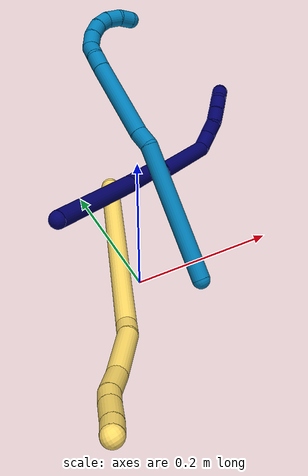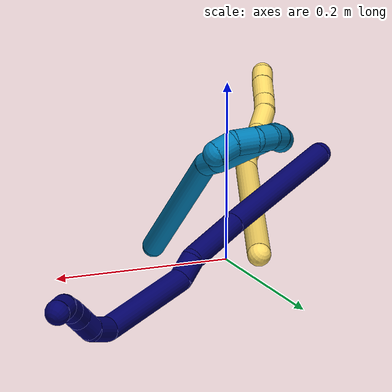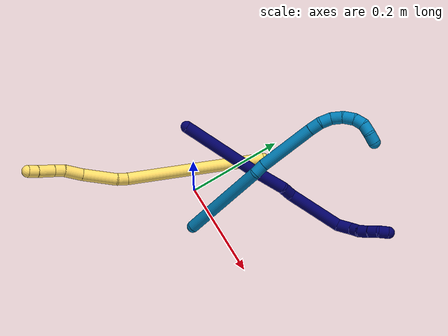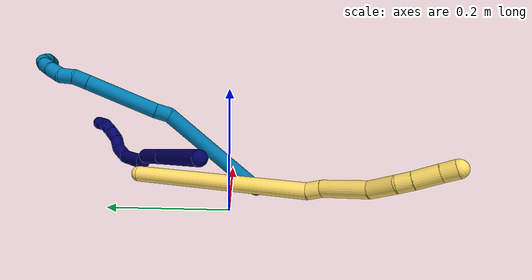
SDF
<sdf version="1.7">
 <world name="default">
  <model name="photoneo_s_sensor">
   <static>1</static>
   <pose>0 0 2 1.57079 1.57079 3.14159</pose>
   <link name="link">
    <inertial><mass>0.1</mass></inertial>
    <sensor name="sensor" type="depth">
     <update_rate>30</update_rate>
     <camera>
      <horizontal_fov>1.22</horizontal_fov>
      <image><width>1920</width><height>1200</height><format>B8G8R8</format></image>
      <clip><near>0.1</near><far>4</far></clip>
      <depth_camera><output>points</output></depth_camera>
     </camera>
     <plugin name="camera_plugin" filename="libgazebo_ros_depth_camera.so">
      <baseline>0.2</baseline>
      <alwaysOn>1</alwaysOn>
      <updateRate>0.0</updateRate>
      <cameraName>camera_ir</cameraName>
      <imageTopicName>/camera/color/image_raw</imageTopicName>
      <cameraInfoTopicName>/camera/color/camera_info</cameraInfoTopicName>
      <depthImageTopicName>/camera/depth/image_raw</depthImageTopicName>
      <depthImageCameraInfoTopicName>/camera/depth/camera_info</depthImageCameraInfoTopicName>
      <pointCloudTopicName>/camera/depth/points</pointCloudTopicName>
      <frameName>fr_optical</frameName>
      <pointCloudCutoff>0.1</pointCloudCutoff>
      <pointCloudCutoffMax>2.0</pointCloudCutoffMax>
      <distortionK1>0</distortionK1>
      <distortionK2>0</distortionK2>
      <distortionK3>0</distortionK3>
      <distortionT1>0</distortionT1>
      <distortionT2>0</distortionT2>
      <CxPrime>0</CxPrime>
      <Cx>0</Cx>
      <Cy>0</Cy>
      <focalLength>0</focalLength>
      <hackBaseline>0</hackBaseline>
     </plugin>
    </sensor>
   </link>
  </model>
  <model name="bin">
   <static>1</static>
   <link name="bottom">
    <collision name="collision-bottom">
     <pose>0 0 -0.01 0 -0 0</pose>
     <geometry><box><size>0.8 0.6 0.02</size></box></geometry>
     <surface>
      <friction><ode><mu>100</mu><mu2>100</mu2></ode></friction>
      <contact><collide_bitmask>65535</collide_bitmask></contact>
     </surface>
    </collision>
   </link>
   <link name="west_wall">
    <collision name="collision-west_wall">
     <pose>-0.41 0 0.1 0 -0 0</pose>
     <geometry><box><size>0.02 0.6 0.2</size></box></geometry>
     <surface>
      <friction><ode><mu>100</mu><mu2>100</mu2></ode></friction>
      <contact><collide_bitmask>65535</collide_bitmask></contact>
     </surface>
    </collision>
   </link>
   <link name="east_wall">
    <collision name="collision-east_wall">
     <pose>0.41 0 0.1 0 -0 0</pose>
     <geometry><box><size>0.02 0.6 0.2</size></box></geometry>
     <surface>
      <friction><ode><mu>100</mu><mu2>100</mu2></ode></friction>
      <contact><collide_bitmask>65535</collide_bitmask></contact>
     </surface>
    </collision>
   </link>
   <link name="south_wall">
    <collision name="collision-south_wall">
     <pose>0 -0.31 0.1 0 -0 0</pose>
     <geometry><box><size>0.8 0.02 0.2</size></box></geometry>
     <surface>
      <friction><ode><mu>100</mu><mu2>100</mu2></ode></friction>
      <contact><collide_bitmask>65535</collide_bitmask></contact>
     </surface>
    </collision>
   </link>
   <link name="north_wall">
    <collision name="collision-north_wall">
     <pose>0 0.31 0.1 0 -0 0</pose>
     <geometry><box><size>0.8 0.02 0.2</size></box></geometry>
     <surface>
      <friction><ode><mu>100</mu><mu2>100</mu2></ode></friction>
      <contact><collide_bitmask>65535</collide_bitmask></contact>
     </surface>
    </collision>
   </link>
  </model>
  <model name="5">
   <static>0</static>
   <link name="5">
    <collision name="collision-cylinder-e_1_1_4">
     <pose>-0.022646 -0.115559 -0.08104 2.18238 -0.159092 -0.304162</pose>
     <geometry><cylinder><radius>0.0125</radius><length>0.285896</length></cylinder></geometry>
     <surface>
      <friction><ode><mu>1.16</mu><mu2>1.16</mu2><slip1>0</slip1><slip2>0</slip2></ode></friction>
      <contact><ode><kp>1e+06</kp><kd>1</kd><max_vel>0</max_vel><min_depth>0.001</min_depth></ode></contact>
     </surface>
    </collision>
    <visual name="visual-cylinder-e_1_1_4">
     <pose>-0.022646 -0.115559 -0.08104 2.18238 -0.159092 -0.304162</pose>
     <geometry><cylinder><radius>0.0125</radius><length>0.285896</length></cylinder></geometry>
     <material><ambient>1 0.858824 0.4 1</ambient></material>
    </visual>
    <collision name="collision-cylinder-e_2_4_5">
     <pose>-0.045787 -0.241941 -0.165988 1.91738 -0.043017 -0.061263</pose>
     <geometry><cylinder><radius>0.0125</radius><length>0.023037</length></cylinder></geometry>
     <surface>
      <friction><ode><mu>1.16</mu><mu2>1.16</mu2><slip1>0</slip1><slip2>0</slip2></ode></friction>
      <contact><ode><kp>1e+06</kp><kd>1</kd><max_vel>0</max_vel><min_depth>0.001</min_depth></ode></contact>
     </surface>
    </collision>
    <visual name="visual-cylinder-e_2_4_5">
     <pose>-0.045787 -0.241941 -0.165988 1.91738 -0.043017 -0.061263</pose>
     <geometry><cylinder><radius>0.0125</radius><length>0.023037</length></cylinder></geometry>
     <material><ambient>1 0.858824 0.4 1</ambient></material>
    </visual>
    <collision name="collision-cylinder-e_3_5_6">
     <pose>-0.057038 -0.285231 -0.18165 1.91811 -0.301956 -0.427121</pose>
     <geometry><cylinder><radius>0.0125</radius><length>0.072329</length></cylinder></geometry>
     <surface>
      <friction><ode><mu>1.16</mu><mu2>1.16</mu2><slip1>0</slip1><slip2>0</slip2></ode></friction>
      <contact><ode><kp>1e+06</kp><kd>1</kd><max_vel>0</max_vel><min_depth>0.001</min_depth></ode></contact>
     </surface>
    </collision>
    <visual name="visual-cylinder-e_3_5_6">
     <pose>-0.057038 -0.285231 -0.18165 1.91811 -0.301956 -0.427121</pose>
     <geometry><cylinder><radius>0.0125</radius><length>0.072329</length></cylinder></geometry>
     <material><ambient>1 0.858824 0.4 1</ambient></material>
    </visual>
    <collision name="collision-cylinder-e_4_6_7">
     <pose>-0.071888 -0.337163 -0.196301 1.71864 -0.205197 -0.237733</pose>
     <geometry><cylinder><radius>0.0125</radius><length>0.040203</length></cylinder></geometry>
     <surface>
      <friction><ode><mu>1.16</mu><mu2>1.16</mu2><slip1>0</slip1><slip2>0</slip2></ode></friction>
      <contact><ode><kp>1e+06</kp><kd>1</kd><max_vel>0</max_vel><min_depth>0.001</min_depth></ode></contact>
     </surface>
    </collision>
    <visual name="visual-cylinder-e_4_6_7">
     <pose>-0.071888 -0.337163 -0.196301 1.71864 -0.205197 -0.237733</pose>
     <geometry><cylinder><radius>0.0125</radius><length>0.040203</length></cylinder></geometry>
     <material><ambient>1 0.858824 0.4 1</ambient></material>
    </visual>
    <collision name="collision-cylinder-e_5_7_8">
     <pose>-0.076328 -0.367247 -0.202467 1.8692 -0.030981 -0.04194</pose>
     <geometry><cylinder><radius>0.0125</radius><length>0.022232</length></cylinder></geometry>
     <surface>
      <friction><ode><mu>1.16</mu><mu2>1.16</mu2><slip1>0</slip1><slip2>0</slip2></ode></friction>
      <contact><ode><kp>1e+06</kp><kd>1</kd><max_vel>0</max_vel><min_depth>0.001</min_depth></ode></contact>
     </surface>
    </collision>
    <visual name="visual-cylinder-e_5_7_8">
     <pose>-0.076328 -0.367247 -0.202467 1.8692 -0.030981 -0.04194</pose>
     <geometry><cylinder><radius>0.0125</radius><length>0.022232</length></cylinder></geometry>
     <material><ambient>1 0.858824 0.4 1</ambient></material>
    </visual>
    <collision name="collision-cylinder-e_6_8_9">
     <pose>-0.076279 -0.394821 -0.210629 1.85193 0.022334 0.029695</pose>
     <geometry><cylinder><radius>0.0125</radius><length>0.035303</length></cylinder></geometry>
     <surface>
      <friction><ode><mu>1.16</mu><mu2>1.16</mu2><slip1>0</slip1><slip2>0</slip2></ode></friction>
      <contact><ode><kp>1e+06</kp><kd>1</kd><max_vel>0</max_vel><min_depth>0.001</min_depth></ode></contact>
     </surface>
    </collision>
    <visual name="visual-cylinder-e_6_8_9">
     <pose>-0.076279 -0.394821 -0.210629 1.85193 0.022334 0.029695</pose>
     <geometry><cylinder><radius>0.0125</radius><length>0.035303</length></cylinder></geometry>
     <material><ambient>1 0.858824 0.4 1</ambient></material>
    </visual>
    <collision name="collision-cylinder-e_7_9_2">
     <pose>-0.076318 -0.421929 -0.218167 1.82526 -0.041314 -0.05343</pose>
     <geometry><cylinder><radius>0.0125</radius><length>0.021001</length></cylinder></geometry>
     <surface>
      <friction><ode><mu>1.16</mu><mu2>1.16</mu2><slip1>0</slip1><slip2>0</slip2></ode></friction>
      <contact><ode><kp>1e+06</kp><kd>1</kd><max_vel>0</max_vel><min_depth>0.001</min_depth></ode></contact>
     </surface>
    </collision>
    <visual name="visual-cylinder-e_7_9_2">
     <pose>-0.076318 -0.421929 -0.218167 1.82526 -0.041314 -0.05343</pose>
     <geometry><cylinder><radius>0.0125</radius><length>0.021001</length></cylinder></geometry>
     <material><ambient>1 0.858824 0.4 1</ambient></material>
    </visual>
    <collision name="collision-sphere-2">
     <pose>-0.076752 -0.432083 -0.220808 0 -0 0</pose>
     <geometry><sphere><radius>0.0125</radius></sphere></geometry>
     <surface>
      <friction><ode><mu>1.16</mu><mu2>1.16</mu2><slip1>0</slip1><slip2>0</slip2></ode></friction>
      <contact><ode><kp>1e+06</kp><kd>1</kd><max_vel>0</max_vel><min_depth>0.001</min_depth></ode></contact>
     </surface>
    </collision>
    <visual name="visual-sphere-2">
     <pose>-0.076752 -0.432083 -0.220808 0 -0 0</pose>
     <geometry><sphere><radius>0.0125</radius></sphere></geometry>
     <material><ambient>1 0.858824 0.4 1</ambient></material>
    </visual>
    <collision name="collision-sphere-9">
     <pose>-0.075884 -0.411776 -0.215526 0 -0 0</pose>
     <geometry><sphere><radius>0.0125</radius></sphere></geometry>
     <surface>
      <friction><ode><mu>1.16</mu><mu2>1.16</mu2><slip1>0</slip1><slip2>0</slip2></ode></friction>
      <contact><ode><kp>1e+06</kp><kd>1</kd><max_vel>0</max_vel><min_depth>0.001</min_depth></ode></contact>
     </surface>
    </collision>
    <visual name="visual-sphere-9">
     <pose>-0.075884 -0.411776 -0.215526 0 -0 0</pose>
     <geometry><sphere><radius>0.0125</radius></sphere></geometry>
     <material><ambient>1 0.858824 0.4 1</ambient></material>
    </visual>
    <collision name="collision-sphere-4">
     <pose>-0.045292 -0.231118 -0.162079 0 -0 0</pose>
     <geometry><sphere><radius>0.0125</radius></sphere></geometry>
     <surface>
      <friction><ode><mu>1.16</mu><mu2>1.16</mu2><slip1>0</slip1><slip2>0</slip2></ode></friction>
      <contact><ode><kp>1e+06</kp><kd>1</kd><max_vel>0</max_vel><min_depth>0.001</min_depth></ode></contact>
     </surface>
    </collision>
    <visual name="visual-sphere-4">
     <pose>-0.045292 -0.231118 -0.162079 0 -0 0</pose>
     <geometry><sphere><radius>0.0125</radius></sphere></geometry>
     <material><ambient>1 0.858824 0.4 1</ambient></material>
    </visual>
    <collision name="collision-sphere-1">
     <geometry><sphere><radius>0.0125</radius></sphere></geometry>
     <surface>
      <friction><ode><mu>1.16</mu><mu2>1.16</mu2><slip1>0</slip1><slip2>0</slip2></ode></friction>
      <contact><ode><kp>1e+06</kp><kd>1</kd><max_vel>0</max_vel><min_depth>0.001</min_depth></ode></contact>
     </surface>
    </collision>
    <visual name="visual-sphere-1">
     <geometry><sphere><radius>0.0125</radius></sphere></geometry>
     <material><ambient>1 0.858824 0.4 1</ambient></material>
    </visual>
    <collision name="collision-sphere-8">
     <pose>-0.076673 -0.377867 -0.205733 0 -0 0</pose>
     <geometry><sphere><radius>0.0125</radius></sphere></geometry>
     <surface>
      <friction><ode><mu>1.16</mu><mu2>1.16</mu2><slip1>0</slip1><slip2>0</slip2></ode></friction>
      <contact><ode><kp>1e+06</kp><kd>1</kd><max_vel>0</max_vel><min_depth>0.001</min_depth></ode></contact>
     </surface>
    </collision>
    <visual name="visual-sphere-8">
     <pose>-0.076673 -0.377867 -0.205733 0 -0 0</pose>
     <geometry><sphere><radius>0.0125</radius></sphere></geometry>
     <material><ambient>1 0.858824 0.4 1</ambient></material>
    </visual>
    <collision name="collision-sphere-5">
     <pose>-0.046283 -0.252765 -0.169897 0 -0 0</pose>
     <geometry><sphere><radius>0.0125</radius></sphere></geometry>
     <surface>
      <friction><ode><mu>1.16</mu><mu2>1.16</mu2><slip1>0</slip1><slip2>0</slip2></ode></friction>
      <contact><ode><kp>1e+06</kp><kd>1</kd><max_vel>0</max_vel><min_depth>0.001</min_depth></ode></contact>
     </surface>
    </collision>
    <visual name="visual-sphere-5">
     <pose>-0.046283 -0.252765 -0.169897 0 -0 0</pose>
     <geometry><sphere><radius>0.0125</radius></sphere></geometry>
     <material><ambient>1 0.858824 0.4 1</ambient></material>
    </visual>
    <collision name="collision-sphere-6">
     <pose>-0.067792 -0.317698 -0.193402 0 -0 0</pose>
     <geometry><sphere><radius>0.0125</radius></sphere></geometry>
     <surface>
      <friction><ode><mu>1.16</mu><mu2>1.16</mu2><slip1>0</slip1><slip2>0</slip2></ode></friction>
      <contact><ode><kp>1e+06</kp><kd>1</kd><max_vel>0</max_vel><min_depth>0.001</min_depth></ode></contact>
     </surface>
    </collision>
    <visual name="visual-sphere-6">
     <pose>-0.067792 -0.317698 -0.193402 0 -0 0</pose>
     <geometry><sphere><radius>0.0125</radius></sphere></geometry>
     <material><ambient>1 0.858824 0.4 1</ambient></material>
    </visual>
    <collision name="collision-sphere-7">
     <pose>-0.075984 -0.356628 -0.1992 0 -0 0</pose>
     <geometry><sphere><radius>0.0125</radius></sphere></geometry>
     <surface>
      <friction><ode><mu>1.16</mu><mu2>1.16</mu2><slip1>0</slip1><slip2>0</slip2></ode></friction>
      <contact><ode><kp>1e+06</kp><kd>1</kd><max_vel>0</max_vel><min_depth>0.001</min_depth></ode></contact>
     </surface>
    </collision>
    <visual name="visual-sphere-7">
     <pose>-0.075984 -0.356628 -0.1992 0 -0 0</pose>
     <geometry><sphere><radius>0.0125</radius></sphere></geometry>
     <material><ambient>1 0.858824 0.4 1</ambient></material>
    </visual>
    <inertial>
     <pose>-0.041075 -0.207521 -0.129084 0 -0 0</pose>
     <mass>0.5</mass>
     <inertia>
      <ixx>0.001291</ixx>
      <ixy>0</ixy>
      <ixz>0</ixz>
      <iyy>-0.001635</iyy>
      <iyz>0</iyz>
      <izz>0.001936</izz>
     </inertia>
    </inertial>
   </link>
   <pose>0.028414 0.150583 0.049533 -0.75033 -0.412836 -0.169391</pose>
  </model>
  <model name="7">
   <static>0</static>
   <link name="7">
    <collision name="collision-cylinder-e_1_1_4">
     <pose>0.013231 0.010385 0.078708 -0.131191 0.165136 -0.010872</pose>
     <geometry><cylinder><radius>0.0125</radius><length>0.16097</length></cylinder></geometry>
     <surface>
      <friction><ode><mu>1.16</mu><mu2>1.16</mu2><slip1>0</slip1><slip2>0</slip2></ode></friction>
      <contact><ode><kp>1e+06</kp><kd>1</kd><max_vel>0</max_vel><min_depth>0.001</min_depth></ode></contact>
     </surface>
    </collision>
    <visual name="visual-cylinder-e_1_1_4">
     <pose>0.013231 0.010385 0.078708 -0.131191 0.165136 -0.010872</pose>
     <geometry><cylinder><radius>0.0125</radius><length>0.16097</length></cylinder></geometry>
     <material><ambient>0.003922 0 0.403922 1</ambient></material>
    </visual>
    <collision name="collision-cylinder-e_2_4_5">
     <pose>0.032861 0.02379 0.195093 -0.079954 0.167733 -0.006725</pose>
     <geometry><cylinder><radius>0.0125</radius><length>0.076673</length></cylinder></geometry>
     <surface>
      <friction><ode><mu>1.16</mu><mu2>1.16</mu2><slip1>0</slip1><slip2>0</slip2></ode></friction>
      <contact><ode><kp>1e+06</kp><kd>1</kd><max_vel>0</max_vel><min_depth>0.001</min_depth></ode></contact>
     </surface>
    </collision>
    <visual name="visual-cylinder-e_2_4_5">
     <pose>0.032861 0.02379 0.195093 -0.079954 0.167733 -0.006725</pose>
     <geometry><cylinder><radius>0.0125</radius><length>0.076673</length></cylinder></geometry>
     <material><ambient>0.003922 0 0.403922 1</ambient></material>
    </visual>
    <collision name="collision-cylinder-e_3_5_6">
     <pose>0.035821 0.029024 0.245213 -0.176216 -0.26582 0.02362</pose>
     <geometry><cylinder><radius>0.0125</radius><length>0.026197</length></cylinder></geometry>
     <surface>
      <friction><ode><mu>1.16</mu><mu2>1.16</mu2><slip1>0</slip1><slip2>0</slip2></ode></friction>
      <contact><ode><kp>1e+06</kp><kd>1</kd><max_vel>0</max_vel><min_depth>0.001</min_depth></ode></contact>
     </surface>
    </collision>
    <visual name="visual-cylinder-e_3_5_6">
     <pose>0.035821 0.029024 0.245213 -0.176216 -0.26582 0.02362</pose>
     <geometry><cylinder><radius>0.0125</radius><length>0.026197</length></cylinder></geometry>
     <material><ambient>0.003922 0 0.403922 1</ambient></material>
    </visual>
    <collision name="collision-cylinder-e_4_6_7">
     <pose>0.045964 0.03896 0.313734 -0.136809 0.235518 -0.01621</pose>
     <geometry><cylinder><radius>0.0125</radius><length>0.116429</length></cylinder></geometry>
     <surface>
      <friction><ode><mu>1.16</mu><mu2>1.16</mu2><slip1>0</slip1><slip2>0</slip2></ode></friction>
      <contact><ode><kp>1e+06</kp><kd>1</kd><max_vel>0</max_vel><min_depth>0.001</min_depth></ode></contact>
     </surface>
    </collision>
    <visual name="visual-cylinder-e_4_6_7">
     <pose>0.045964 0.03896 0.313734 -0.136809 0.235518 -0.01621</pose>
     <geometry><cylinder><radius>0.0125</radius><length>0.116429</length></cylinder></geometry>
     <material><ambient>0.003922 0 0.403922 1</ambient></material>
    </visual>
    <collision name="collision-cylinder-e_5_7_8">
     <pose>0.069796 0.044815 0.382026 0.151536 0.692433 0.054757</pose>
     <geometry><cylinder><radius>0.0125</radius><length>0.032104</length></cylinder></geometry>
     <surface>
      <friction><ode><mu>1.16</mu><mu2>1.16</mu2><slip1>0</slip1><slip2>0</slip2></ode></friction>
      <contact><ode><kp>1e+06</kp><kd>1</kd><max_vel>0</max_vel><min_depth>0.001</min_depth></ode></contact>
     </surface>
    </collision>
    <visual name="visual-cylinder-e_5_7_8">
     <pose>0.069796 0.044815 0.382026 0.151536 0.692433 0.054757</pose>
     <geometry><cylinder><radius>0.0125</radius><length>0.032104</length></cylinder></geometry>
     <material><ambient>0.003922 0 0.403922 1</ambient></material>
    </visual>
    <collision name="collision-cylinder-e_6_8_9">
     <pose>0.090788 0.042874 0.398486 0.017842 1.19432 0.012132</pose>
     <geometry><cylinder><radius>0.0125</radius><length>0.023107</length></cylinder></geometry>
     <surface>
      <friction><ode><mu>1.16</mu><mu2>1.16</mu2><slip1>0</slip1><slip2>0</slip2></ode></friction>
      <contact><ode><kp>1e+06</kp><kd>1</kd><max_vel>0</max_vel><min_depth>0.001</min_depth></ode></contact>
     </surface>
    </collision>
    <visual name="visual-cylinder-e_6_8_9">
     <pose>0.090788 0.042874 0.398486 0.017842 1.19432 0.012132</pose>
     <geometry><cylinder><radius>0.0125</radius><length>0.023107</length></cylinder></geometry>
     <material><ambient>0.003922 0 0.403922 1</ambient></material>
    </visual>
    <collision name="collision-cylinder-e_7_9_10">
     <pose>0.11078 0.039648 0.408577 0.494497 0.94818 0.257603</pose>
     <geometry><cylinder><radius>0.0125</radius><length>0.022768</length></cylinder></geometry>
     <surface>
      <friction><ode><mu>1.16</mu><mu2>1.16</mu2><slip1>0</slip1><slip2>0</slip2></ode></friction>
      <contact><ode><kp>1e+06</kp><kd>1</kd><max_vel>0</max_vel><min_depth>0.001</min_depth></ode></contact>
     </surface>
    </collision>
    <visual name="visual-cylinder-e_7_9_10">
     <pose>0.11078 0.039648 0.408577 0.494497 0.94818 0.257603</pose>
     <geometry><cylinder><radius>0.0125</radius><length>0.022768</length></cylinder></geometry>
     <material><ambient>0.003922 0 0.403922 1</ambient></material>
    </visual>
    <collision name="collision-cylinder-e_8_10_11">
     <pose>0.127995 0.033177 0.42058 0.494412 0.850063 0.227468</pose>
     <geometry><cylinder><radius>0.0125</radius><length>0.021207</length></cylinder></geometry>
     <surface>
      <friction><ode><mu>1.16</mu><mu2>1.16</mu2><slip1>0</slip1><slip2>0</slip2></ode></friction>
      <contact><ode><kp>1e+06</kp><kd>1</kd><max_vel>0</max_vel><min_depth>0.001</min_depth></ode></contact>
     </surface>
    </collision>
    <visual name="visual-cylinder-e_8_10_11">
     <pose>0.127995 0.033177 0.42058 0.494412 0.850063 0.227468</pose>
     <geometry><cylinder><radius>0.0125</radius><length>0.021207</length></cylinder></geometry>
     <material><ambient>0.003922 0 0.403922 1</ambient></material>
    </visual>
    <collision name="collision-cylinder-e_9_11_2">
     <pose>0.139809 0.026606 0.435693 0.348187 0.383857 0.068325</pose>
     <geometry><cylinder><radius>0.0125</radius><length>0.020546</length></cylinder></geometry>
     <surface>
      <friction><ode><mu>1.16</mu><mu2>1.16</mu2><slip1>0</slip1><slip2>0</slip2></ode></friction>
      <contact><ode><kp>1e+06</kp><kd>1</kd><max_vel>0</max_vel><min_depth>0.001</min_depth></ode></contact>
     </surface>
    </collision>
    <visual name="visual-cylinder-e_9_11_2">
     <pose>0.139809 0.026606 0.435693 0.348187 0.383857 0.068325</pose>
     <geometry><cylinder><radius>0.0125</radius><length>0.020546</length></cylinder></geometry>
     <material><ambient>0.003922 0 0.403922 1</ambient></material>
    </visual>
    <collision name="collision-sphere-2">
     <pose>0.143656 0.023356 0.444647 0 -0 0</pose>
     <geometry><sphere><radius>0.0125</radius></sphere></geometry>
     <surface>
      <friction><ode><mu>1.16</mu><mu2>1.16</mu2><slip1>0</slip1><slip2>0</slip2></ode></friction>
      <contact><ode><kp>1e+06</kp><kd>1</kd><max_vel>0</max_vel><min_depth>0.001</min_depth></ode></contact>
     </surface>
    </collision>
    <visual name="visual-sphere-2">
     <pose>0.143656 0.023356 0.444647 0 -0 0</pose>
     <geometry><sphere><radius>0.0125</radius></sphere></geometry>
     <material><ambient>0.003922 0 0.403922 1</ambient></material>
    </visual>
    <collision name="collision-sphere-11">
     <pose>0.135962 0.029856 0.42674 0 -0 0</pose>
     <geometry><sphere><radius>0.0125</radius></sphere></geometry>
     <surface>
      <friction><ode><mu>1.16</mu><mu2>1.16</mu2><slip1>0</slip1><slip2>0</slip2></ode></friction>
      <contact><ode><kp>1e+06</kp><kd>1</kd><max_vel>0</max_vel><min_depth>0.001</min_depth></ode></contact>
     </surface>
    </collision>
    <visual name="visual-sphere-11">
     <pose>0.135962 0.029856 0.42674 0 -0 0</pose>
     <geometry><sphere><radius>0.0125</radius></sphere></geometry>
     <material><ambient>0.003922 0 0.403922 1</ambient></material>
    </visual>
    <collision name="collision-sphere-10">
     <pose>0.120028 0.036497 0.41442 0 -0 0</pose>
     <geometry><sphere><radius>0.0125</radius></sphere></geometry>
     <surface>
      <friction><ode><mu>1.16</mu><mu2>1.16</mu2><slip1>0</slip1><slip2>0</slip2></ode></friction>
      <contact><ode><kp>1e+06</kp><kd>1</kd><max_vel>0</max_vel><min_depth>0.001</min_depth></ode></contact>
     </surface>
    </collision>
    <visual name="visual-sphere-10">
     <pose>0.120028 0.036497 0.41442 0 -0 0</pose>
     <geometry><sphere><radius>0.0125</radius></sphere></geometry>
     <material><ambient>0.003922 0 0.403922 1</ambient></material>
    </visual>
    <collision name="collision-sphere-9">
     <pose>0.101533 0.042798 0.402733 0 -0 0</pose>
     <geometry><sphere><radius>0.0125</radius></sphere></geometry>
     <surface>
      <friction><ode><mu>1.16</mu><mu2>1.16</mu2><slip1>0</slip1><slip2>0</slip2></ode></friction>
      <contact><ode><kp>1e+06</kp><kd>1</kd><max_vel>0</max_vel><min_depth>0.001</min_depth></ode></contact>
     </surface>
    </collision>
    <visual name="visual-sphere-9">
     <pose>0.101533 0.042798 0.402733 0 -0 0</pose>
     <geometry><sphere><radius>0.0125</radius></sphere></geometry>
     <material><ambient>0.003922 0 0.403922 1</ambient></material>
    </visual>
    <collision name="collision-sphere-4">
     <pose>0.026461 0.020771 0.157415 0 -0 0</pose>
     <geometry><sphere><radius>0.0125</radius></sphere></geometry>
     <surface>
      <friction><ode><mu>1.16</mu><mu2>1.16</mu2><slip1>0</slip1><slip2>0</slip2></ode></friction>
      <contact><ode><kp>1e+06</kp><kd>1</kd><max_vel>0</max_vel><min_depth>0.001</min_depth></ode></contact>
     </surface>
    </collision>
    <visual name="visual-sphere-4">
     <pose>0.026461 0.020771 0.157415 0 -0 0</pose>
     <geometry><sphere><radius>0.0125</radius></sphere></geometry>
     <material><ambient>0.003922 0 0.403922 1</ambient></material>
    </visual>
    <collision name="collision-sphere-1">
     <geometry><sphere><radius>0.0125</radius></sphere></geometry>
     <surface>
      <friction><ode><mu>1.16</mu><mu2>1.16</mu2><slip1>0</slip1><slip2>0</slip2></ode></friction>
      <contact><ode><kp>1e+06</kp><kd>1</kd><max_vel>0</max_vel><min_depth>0.001</min_depth></ode></contact>
     </surface>
    </collision>
    <visual name="visual-sphere-1">
     <geometry><sphere><radius>0.0125</radius></sphere></geometry>
     <material><ambient>0.003922 0 0.403922 1</ambient></material>
    </visual>
    <collision name="collision-sphere-8">
     <pose>0.080044 0.04295 0.394239 0 -0 0</pose>
     <geometry><sphere><radius>0.0125</radius></sphere></geometry>
     <surface>
      <friction><ode><mu>1.16</mu><mu2>1.16</mu2><slip1>0</slip1><slip2>0</slip2></ode></friction>
      <contact><ode><kp>1e+06</kp><kd>1</kd><max_vel>0</max_vel><min_depth>0.001</min_depth></ode></contact>
     </surface>
    </collision>
    <visual name="visual-sphere-8">
     <pose>0.080044 0.04295 0.394239 0 -0 0</pose>
     <geometry><sphere><radius>0.0125</radius></sphere></geometry>
     <material><ambient>0.003922 0 0.403922 1</ambient></material>
    </visual>
    <collision name="collision-sphere-5">
     <pose>0.039262 0.026809 0.232771 0 -0 0</pose>
     <geometry><sphere><radius>0.0125</radius></sphere></geometry>
     <surface>
      <friction><ode><mu>1.16</mu><mu2>1.16</mu2><slip1>0</slip1><slip2>0</slip2></ode></friction>
      <contact><ode><kp>1e+06</kp><kd>1</kd><max_vel>0</max_vel><min_depth>0.001</min_depth></ode></contact>
     </surface>
    </collision>
    <visual name="visual-sphere-5">
     <pose>0.039262 0.026809 0.232771 0 -0 0</pose>
     <geometry><sphere><radius>0.0125</radius></sphere></geometry>
     <material><ambient>0.003922 0 0.403922 1</ambient></material>
    </visual>
    <collision name="collision-sphere-6">
     <pose>0.03238 0.03124 0.257656 0 -0 0</pose>
     <geometry><sphere><radius>0.0125</radius></sphere></geometry>
     <surface>
      <friction><ode><mu>1.16</mu><mu2>1.16</mu2><slip1>0</slip1><slip2>0</slip2></ode></friction>
      <contact><ode><kp>1e+06</kp><kd>1</kd><max_vel>0</max_vel><min_depth>0.001</min_depth></ode></contact>
     </surface>
    </collision>
    <visual name="visual-sphere-6">
     <pose>0.03238 0.03124 0.257656 0 -0 0</pose>
     <geometry><sphere><radius>0.0125</radius></sphere></geometry>
     <material><ambient>0.003922 0 0.403922 1</ambient></material>
    </visual>
    <collision name="collision-sphere-7">
     <pose>0.059548 0.04668 0.369812 0 -0 0</pose>
     <geometry><sphere><radius>0.0125</radius></sphere></geometry>
     <surface>
      <friction><ode><mu>1.16</mu><mu2>1.16</mu2><slip1>0</slip1><slip2>0</slip2></ode></friction>
      <contact><ode><kp>1e+06</kp><kd>1</kd><max_vel>0</max_vel><min_depth>0.001</min_depth></ode></contact>
     </surface>
    </collision>
    <visual name="visual-sphere-7">
     <pose>0.059548 0.04668 0.369812 0 -0 0</pose>
     <geometry><sphere><radius>0.0125</radius></sphere></geometry>
     <material><ambient>0.003922 0 0.403922 1</ambient></material>
    </visual>
    <inertial>
     <pose>0.046774 0.026749 0.23845 0 -0 0</pose>
     <mass>0.5</mass>
     <inertia>
      <ixx>0.000537</ixx>
      <ixy>0</ixy>
      <ixz>0</ixz>
      <iyy>0.000536</iyy>
      <iyz>0</iyz>
      <izz>-0.000134</izz>
     </inertia>
    </inertial>
   </link>
   <pose>-0.093198 0.039173 0.120546 -2.77478 -1.10639 0.2619</pose>
  </model>
  <model name="9">
   <static>0</static>
   <link name="9">
    <collision name="collision-cylinder-e_1_1_4">
     <pose>0.007233 0.00514 0.097541 -0.052651 0.073917 -0.001947</pose>
     <geometry><cylinder><radius>0.0125</radius><length>0.195887</length></cylinder></geometry>
     <surface>
      <friction><ode><mu>1.16</mu><mu2>1.16</mu2><slip1>0</slip1><slip2>0</slip2></ode></friction>
      <contact><ode><kp>1e+06</kp><kd>1</kd><max_vel>0</max_vel><min_depth>0.001</min_depth></ode></contact>
     </surface>
    </collision>
    <visual name="visual-cylinder-e_1_1_4">
     <pose>0.007233 0.00514 0.097541 -0.052651 0.073917 -0.001947</pose>
     <geometry><cylinder><radius>0.0125</radius><length>0.195887</length></cylinder></geometry>
     <material><ambient>0 0.490196 0.709804 1</ambient></material>
    </visual>
    <collision name="collision-cylinder-e_2_4_5">
     <pose>0.010852 0.012784 0.206546 -0.214939 -0.298782 0.032473</pose>
     <geometry><cylinder><radius>0.0125</radius><length>0.024557</length></cylinder></geometry>
     <surface>
      <friction><ode><mu>1.16</mu><mu2>1.16</mu2><slip1>0</slip1><slip2>0</slip2></ode></friction>
      <contact><ode><kp>1e+06</kp><kd>1</kd><max_vel>0</max_vel><min_depth>0.001</min_depth></ode></contact>
     </surface>
    </collision>
    <visual name="visual-cylinder-e_2_4_5">
     <pose>0.010852 0.012784 0.206546 -0.214939 -0.298782 0.032473</pose>
     <geometry><cylinder><radius>0.0125</radius><length>0.024557</length></cylinder></geometry>
     <material><ambient>0 0.490196 0.709804 1</ambient></material>
    </visual>
    <collision name="collision-cylinder-e_3_5_6">
     <pose>-0.001894 0.030648 0.275071 -0.262981 -0.153318 0.020316</pose>
     <geometry><cylinder><radius>0.0125</radius><length>0.119588</length></cylinder></geometry>
     <surface>
      <friction><ode><mu>1.16</mu><mu2>1.16</mu2><slip1>0</slip1><slip2>0</slip2></ode></friction>
      <contact><ode><kp>1e+06</kp><kd>1</kd><max_vel>0</max_vel><min_depth>0.001</min_depth></ode></contact>
     </surface>
    </collision>
    <visual name="visual-cylinder-e_3_5_6">
     <pose>-0.001894 0.030648 0.275071 -0.262981 -0.153318 0.020316</pose>
     <geometry><cylinder><radius>0.0125</radius><length>0.119588</length></cylinder></geometry>
     <material><ambient>0 0.490196 0.709804 1</ambient></material>
    </visual>
    <collision name="collision-cylinder-e_4_6_7">
     <pose>-0.012641 0.049718 0.343521 -0.314779 -0.134063 0.021307</pose>
     <geometry><cylinder><radius>0.0125</radius><length>0.024171</length></cylinder></geometry>
     <surface>
      <friction><ode><mu>1.16</mu><mu2>1.16</mu2><slip1>0</slip1><slip2>0</slip2></ode></friction>
      <contact><ode><kp>1e+06</kp><kd>1</kd><max_vel>0</max_vel><min_depth>0.001</min_depth></ode></contact>
     </surface>
    </collision>
    <visual name="visual-cylinder-e_4_6_7">
     <pose>-0.012641 0.049718 0.343521 -0.314779 -0.134063 0.021307</pose>
     <geometry><cylinder><radius>0.0125</radius><length>0.024171</length></cylinder></geometry>
     <material><ambient>0 0.490196 0.709804 1</ambient></material>
    </visual>
    <collision name="collision-cylinder-e_5_7_8">
     <pose>-0.017099 0.060634 0.364249 -0.657302 -0.236469 0.080974</pose>
     <geometry><cylinder><radius>0.0125</radius><length>0.024271</length></cylinder></geometry>
     <surface>
      <friction><ode><mu>1.16</mu><mu2>1.16</mu2><slip1>0</slip1><slip2>0</slip2></ode></friction>
      <contact><ode><kp>1e+06</kp><kd>1</kd><max_vel>0</max_vel><min_depth>0.001</min_depth></ode></contact>
     </surface>
    </collision>
    <visual name="visual-cylinder-e_5_7_8">
     <pose>-0.017099 0.060634 0.364249 -0.657302 -0.236469 0.080974</pose>
     <geometry><cylinder><radius>0.0125</radius><length>0.024271</length></cylinder></geometry>
     <material><ambient>0 0.490196 0.709804 1</ambient></material>
    </visual>
    <collision name="collision-cylinder-e_6_8_9">
     <pose>-0.01705 0.075104 0.383223 -0.645838 0.235339 -0.079076</pose>
     <geometry><cylinder><radius>0.0125</radius><length>0.024812</length></cylinder></geometry>
     <surface>
      <friction><ode><mu>1.16</mu><mu2>1.16</mu2><slip1>0</slip1><slip2>0</slip2></ode></friction>
      <contact><ode><kp>1e+06</kp><kd>1</kd><max_vel>0</max_vel><min_depth>0.001</min_depth></ode></contact>
     </surface>
    </collision>
    <visual name="visual-cylinder-e_6_8_9">
     <pose>-0.01705 0.075104 0.383223 -0.645838 0.235339 -0.079076</pose>
     <geometry><cylinder><radius>0.0125</radius><length>0.024812</length></cylinder></geometry>
     <material><ambient>0 0.490196 0.709804 1</ambient></material>
    </visual>
    <collision name="collision-cylinder-e_7_9_10">
     <pose>-0.009756 0.090827 0.399788 -0.884598 0.382538 -0.182897</pose>
     <geometry><cylinder><radius>0.0125</radius><length>0.02358</length></cylinder></geometry>
     <surface>
      <friction><ode><mu>1.16</mu><mu2>1.16</mu2><slip1>0</slip1><slip2>0</slip2></ode></friction>
      <contact><ode><kp>1e+06</kp><kd>1</kd><max_vel>0</max_vel><min_depth>0.001</min_depth></ode></contact>
     </surface>
    </collision>
    <visual name="visual-cylinder-e_7_9_10">
     <pose>-0.009756 0.090827 0.399788 -0.884598 0.382538 -0.182897</pose>
     <geometry><cylinder><radius>0.0125</radius><length>0.02358</length></cylinder></geometry>
     <material><ambient>0 0.490196 0.709804 1</ambient></material>
    </visual>
    <collision name="collision-cylinder-e_8_10_11">
     <pose>0.000232 0.107588 0.409725 -1.22317 0.564265 -0.40109</pose>
     <geometry><cylinder><radius>0.0125</radius><length>0.020893</length></cylinder></geometry>
     <surface>
      <friction><ode><mu>1.16</mu><mu2>1.16</mu2><slip1>0</slip1><slip2>0</slip2></ode></friction>
      <contact><ode><kp>1e+06</kp><kd>1</kd><max_vel>0</max_vel><min_depth>0.001</min_depth></ode></contact>
     </surface>
    </collision>
    <visual name="visual-cylinder-e_8_10_11">
     <pose>0.000232 0.107588 0.409725 -1.22317 0.564265 -0.40109</pose>
     <geometry><cylinder><radius>0.0125</radius><length>0.020893</length></cylinder></geometry>
     <material><ambient>0 0.490196 0.709804 1</ambient></material>
    </visual>
    <collision name="collision-cylinder-e_9_11_12">
     <pose>0.013336 0.123356 0.41133 -1.75631 0.779995 -0.919875</pose>
     <geometry><cylinder><radius>0.0125</radius><length>0.021379</length></cylinder></geometry>
     <surface>
      <friction><ode><mu>1.16</mu><mu2>1.16</mu2><slip1>0</slip1><slip2>0</slip2></ode></friction>
      <contact><ode><kp>1e+06</kp><kd>1</kd><max_vel>0</max_vel><min_depth>0.001</min_depth></ode></contact>
     </surface>
    </collision>
    <visual name="visual-cylinder-e_9_11_12">
     <pose>0.013336 0.123356 0.41133 -1.75631 0.779995 -0.919875</pose>
     <geometry><cylinder><radius>0.0125</radius><length>0.021379</length></cylinder></geometry>
     <material><ambient>0 0.490196 0.709804 1</ambient></material>
    </visual>
    <collision name="collision-cylinder-e_10_12_2">
     <pose>0.025422 0.139547 0.406485 -1.94683 0.453294 -0.653653</pose>
     <geometry><cylinder><radius>0.0125</radius><length>0.020862</length></cylinder></geometry>
     <surface>
      <friction><ode><mu>1.16</mu><mu2>1.16</mu2><slip1>0</slip1><slip2>0</slip2></ode></friction>
      <contact><ode><kp>1e+06</kp><kd>1</kd><max_vel>0</max_vel><min_depth>0.001</min_depth></ode></contact>
     </surface>
    </collision>
    <visual name="visual-cylinder-e_10_12_2">
     <pose>0.025422 0.139547 0.406485 -1.94683 0.453294 -0.653653</pose>
     <geometry><cylinder><radius>0.0125</radius><length>0.020862</length></cylinder></geometry>
     <material><ambient>0 0.490196 0.709804 1</ambient></material>
    </visual>
    <collision name="collision-sphere-2">
     <pose>0.02999 0.14827 0.403041 0 -0 0</pose>
     <geometry><sphere><radius>0.0125</radius></sphere></geometry>
     <surface>
      <friction><ode><mu>1.16</mu><mu2>1.16</mu2><slip1>0</slip1><slip2>0</slip2></ode></friction>
      <contact><ode><kp>1e+06</kp><kd>1</kd><max_vel>0</max_vel><min_depth>0.001</min_depth></ode></contact>
     </surface>
    </collision>
    <visual name="visual-sphere-2">
     <pose>0.02999 0.14827 0.403041 0 -0 0</pose>
     <geometry><sphere><radius>0.0125</radius></sphere></geometry>
     <material><ambient>0 0.490196 0.709804 1</ambient></material>
    </visual>
    <collision name="collision-sphere-12">
     <pose>0.020854 0.130825 0.409929 0 -0 0</pose>
     <geometry><sphere><radius>0.0125</radius></sphere></geometry>
     <surface>
      <friction><ode><mu>1.16</mu><mu2>1.16</mu2><slip1>0</slip1><slip2>0</slip2></ode></friction>
      <contact><ode><kp>1e+06</kp><kd>1</kd><max_vel>0</max_vel><min_depth>0.001</min_depth></ode></contact>
     </surface>
    </collision>
    <visual name="visual-sphere-12">
     <pose>0.020854 0.130825 0.409929 0 -0 0</pose>
     <geometry><sphere><radius>0.0125</radius></sphere></geometry>
     <material><ambient>0 0.490196 0.709804 1</ambient></material>
    </visual>
    <collision name="collision-sphere-11">
     <pose>0.005819 0.115887 0.412732 0 -0 0</pose>
     <geometry><sphere><radius>0.0125</radius></sphere></geometry>
     <surface>
      <friction><ode><mu>1.16</mu><mu2>1.16</mu2><slip1>0</slip1><slip2>0</slip2></ode></friction>
      <contact><ode><kp>1e+06</kp><kd>1</kd><max_vel>0</max_vel><min_depth>0.001</min_depth></ode></contact>
     </surface>
    </collision>
    <visual name="visual-sphere-11">
     <pose>0.005819 0.115887 0.412732 0 -0 0</pose>
     <geometry><sphere><radius>0.0125</radius></sphere></geometry>
     <material><ambient>0 0.490196 0.709804 1</ambient></material>
    </visual>
    <collision name="collision-sphere-10">
     <pose>-0.005355 0.099289 0.406718 0 -0 0</pose>
     <geometry><sphere><radius>0.0125</radius></sphere></geometry>
     <surface>
      <friction><ode><mu>1.16</mu><mu2>1.16</mu2><slip1>0</slip1><slip2>0</slip2></ode></friction>
      <contact><ode><kp>1e+06</kp><kd>1</kd><max_vel>0</max_vel><min_depth>0.001</min_depth></ode></contact>
     </surface>
    </collision>
    <visual name="visual-sphere-10">
     <pose>-0.005355 0.099289 0.406718 0 -0 0</pose>
     <geometry><sphere><radius>0.0125</radius></sphere></geometry>
     <material><ambient>0 0.490196 0.709804 1</ambient></material>
    </visual>
    <collision name="collision-sphere-9">
     <pose>-0.014157 0.082365 0.392857 0 -0 0</pose>
     <geometry><sphere><radius>0.0125</radius></sphere></geometry>
     <surface>
      <friction><ode><mu>1.16</mu><mu2>1.16</mu2><slip1>0</slip1><slip2>0</slip2></ode></friction>
      <contact><ode><kp>1e+06</kp><kd>1</kd><max_vel>0</max_vel><min_depth>0.001</min_depth></ode></contact>
     </surface>
    </collision>
    <visual name="visual-sphere-9">
     <pose>-0.014157 0.082365 0.392857 0 -0 0</pose>
     <geometry><sphere><radius>0.0125</radius></sphere></geometry>
     <material><ambient>0 0.490196 0.709804 1</ambient></material>
    </visual>
    <collision name="collision-sphere-4">
     <pose>0.014466 0.010281 0.195082 0 -0 0</pose>
     <geometry><sphere><radius>0.0125</radius></sphere></geometry>
     <surface>
      <friction><ode><mu>1.16</mu><mu2>1.16</mu2><slip1>0</slip1><slip2>0</slip2></ode></friction>
      <contact><ode><kp>1e+06</kp><kd>1</kd><max_vel>0</max_vel><min_depth>0.001</min_depth></ode></contact>
     </surface>
    </collision>
    <visual name="visual-sphere-4">
     <pose>0.014466 0.010281 0.195082 0 -0 0</pose>
     <geometry><sphere><radius>0.0125</radius></sphere></geometry>
     <material><ambient>0 0.490196 0.709804 1</ambient></material>
    </visual>
    <collision name="collision-sphere-1">
     <geometry><sphere><radius>0.0125</radius></sphere></geometry>
     <surface>
      <friction><ode><mu>1.16</mu><mu2>1.16</mu2><slip1>0</slip1><slip2>0</slip2></ode></friction>
      <contact><ode><kp>1e+06</kp><kd>1</kd><max_vel>0</max_vel><min_depth>0.001</min_depth></ode></contact>
     </surface>
    </collision>
    <visual name="visual-sphere-1">
     <geometry><sphere><radius>0.0125</radius></sphere></geometry>
     <material><ambient>0 0.490196 0.709804 1</ambient></material>
    </visual>
    <collision name="collision-sphere-8">
     <pose>-0.019942 0.067843 0.373589 0 -0 0</pose>
     <geometry><sphere><radius>0.0125</radius></sphere></geometry>
     <surface>
      <friction><ode><mu>1.16</mu><mu2>1.16</mu2><slip1>0</slip1><slip2>0</slip2></ode></friction>
      <contact><ode><kp>1e+06</kp><kd>1</kd><max_vel>0</max_vel><min_depth>0.001</min_depth></ode></contact>
     </surface>
    </collision>
    <visual name="visual-sphere-8">
     <pose>-0.019942 0.067843 0.373589 0 -0 0</pose>
     <geometry><sphere><radius>0.0125</radius></sphere></geometry>
     <material><ambient>0 0.490196 0.709804 1</ambient></material>
    </visual>
    <collision name="collision-sphere-5">
     <pose>0.007238 0.015286 0.218011 0 -0 0</pose>
     <geometry><sphere><radius>0.0125</radius></sphere></geometry>
     <surface>
      <friction><ode><mu>1.16</mu><mu2>1.16</mu2><slip1>0</slip1><slip2>0</slip2></ode></friction>
      <contact><ode><kp>1e+06</kp><kd>1</kd><max_vel>0</max_vel><min_depth>0.001</min_depth></ode></contact>
     </surface>
    </collision>
    <visual name="visual-sphere-5">
     <pose>0.007238 0.015286 0.218011 0 -0 0</pose>
     <geometry><sphere><radius>0.0125</radius></sphere></geometry>
     <material><ambient>0 0.490196 0.709804 1</ambient></material>
    </visual>
    <collision name="collision-sphere-6">
     <pose>-0.011026 0.04601 0.332132 0 -0 0</pose>
     <geometry><sphere><radius>0.0125</radius></sphere></geometry>
     <surface>
      <friction><ode><mu>1.16</mu><mu2>1.16</mu2><slip1>0</slip1><slip2>0</slip2></ode></friction>
      <contact><ode><kp>1e+06</kp><kd>1</kd><max_vel>0</max_vel><min_depth>0.001</min_depth></ode></contact>
     </surface>
    </collision>
    <visual name="visual-sphere-6">
     <pose>-0.011026 0.04601 0.332132 0 -0 0</pose>
     <geometry><sphere><radius>0.0125</radius></sphere></geometry>
     <material><ambient>0 0.490196 0.709804 1</ambient></material>
    </visual>
    <collision name="collision-sphere-7">
     <pose>-0.014256 0.053426 0.354909 0 -0 0</pose>
     <geometry><sphere><radius>0.0125</radius></sphere></geometry>
     <surface>
      <friction><ode><mu>1.16</mu><mu2>1.16</mu2><slip1>0</slip1><slip2>0</slip2></ode></friction>
      <contact><ode><kp>1e+06</kp><kd>1</kd><max_vel>0</max_vel><min_depth>0.001</min_depth></ode></contact>
     </surface>
    </collision>
    <visual name="visual-sphere-7">
     <pose>-0.014256 0.053426 0.354909 0 -0 0</pose>
     <geometry><sphere><radius>0.0125</radius></sphere></geometry>
     <material><ambient>0 0.490196 0.709804 1</ambient></material>
    </visual>
    <inertial>
     <pose>0.001807 0.038922 0.237976 0 -0 0</pose>
     <mass>0.5</mass>
     <inertia>
      <ixx>0.000793</ixx>
      <ixy>0</ixy>
      <ixz>0</ixz>
      <iyy>0.000797</iyy>
      <iyz>0</iyz>
      <izz>-7.5e-05</izz>
     </inertia>
    </inertial>
   </link>
   <pose>0.069469 -0.044306 0.011498 -0.681973 -0.592709 -0.481784</pose>
  </model>
 </world>
</sdf>
